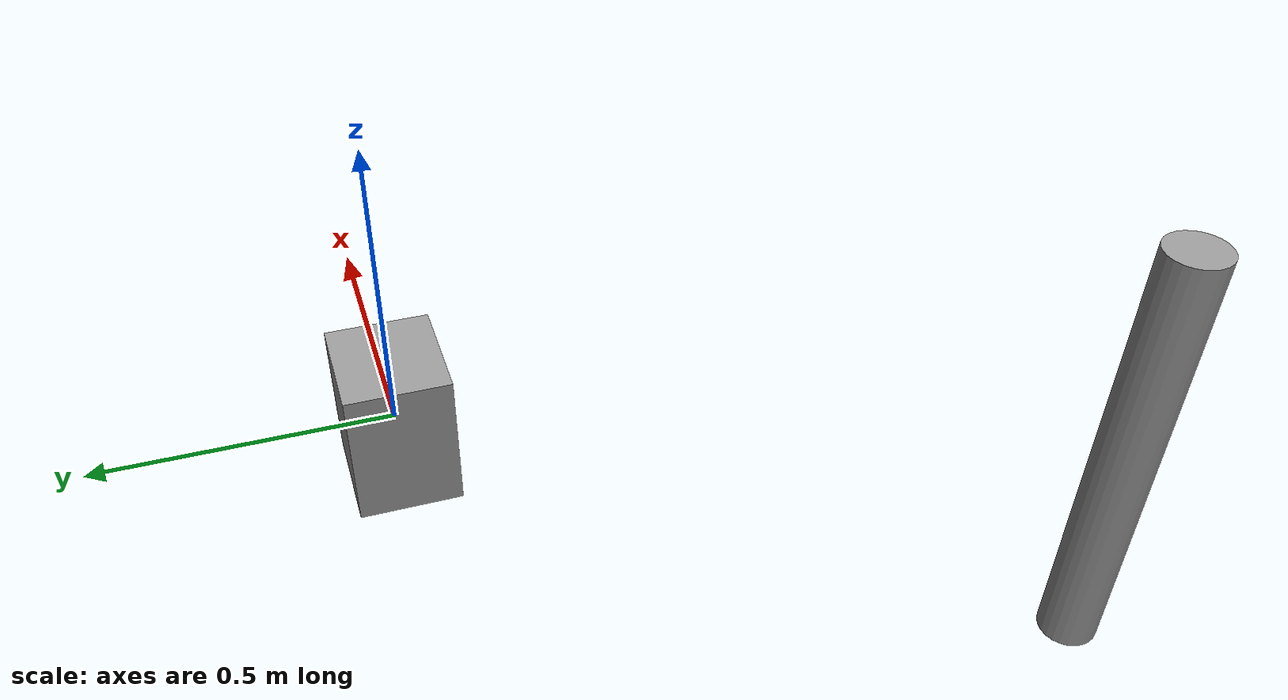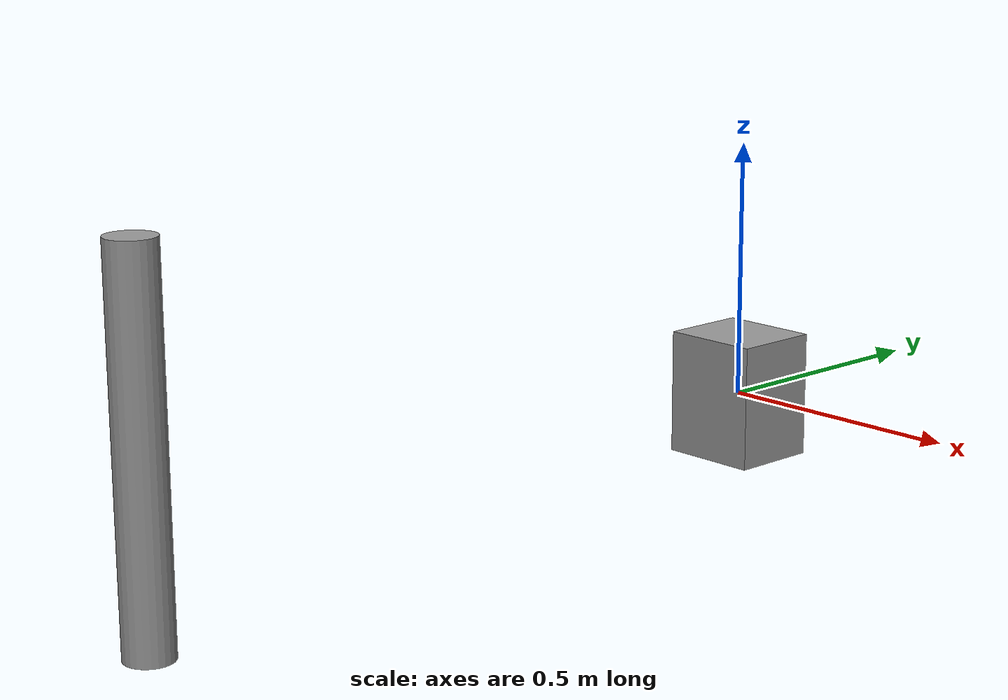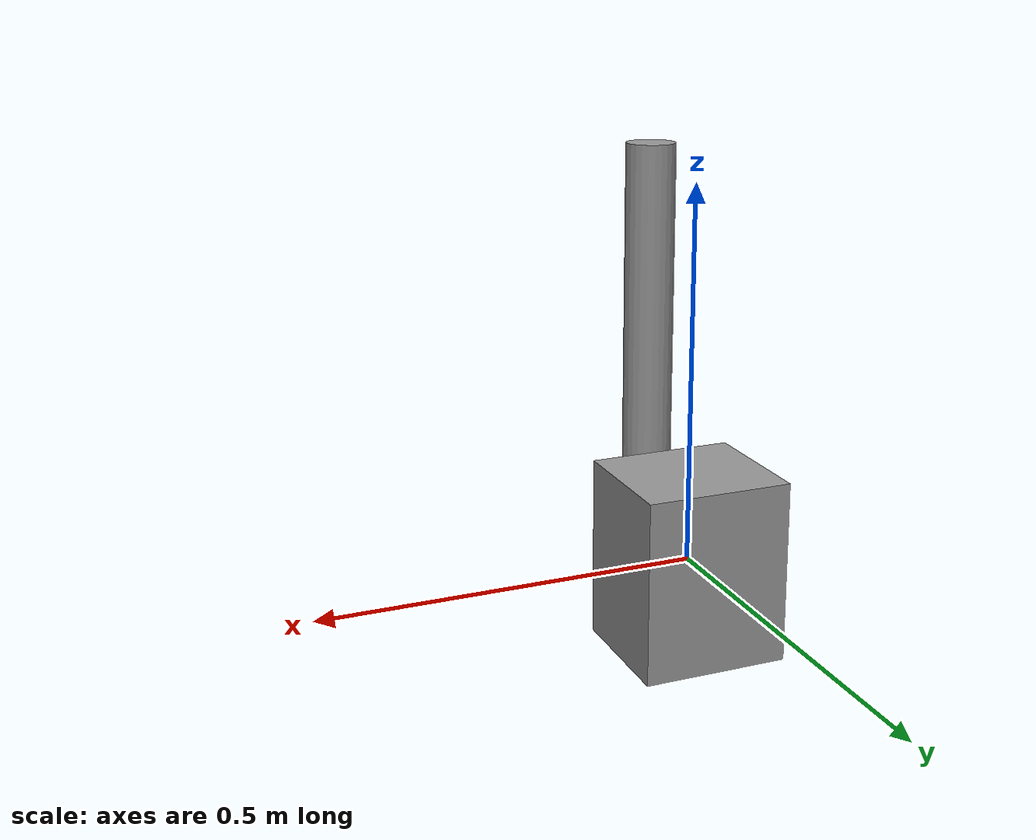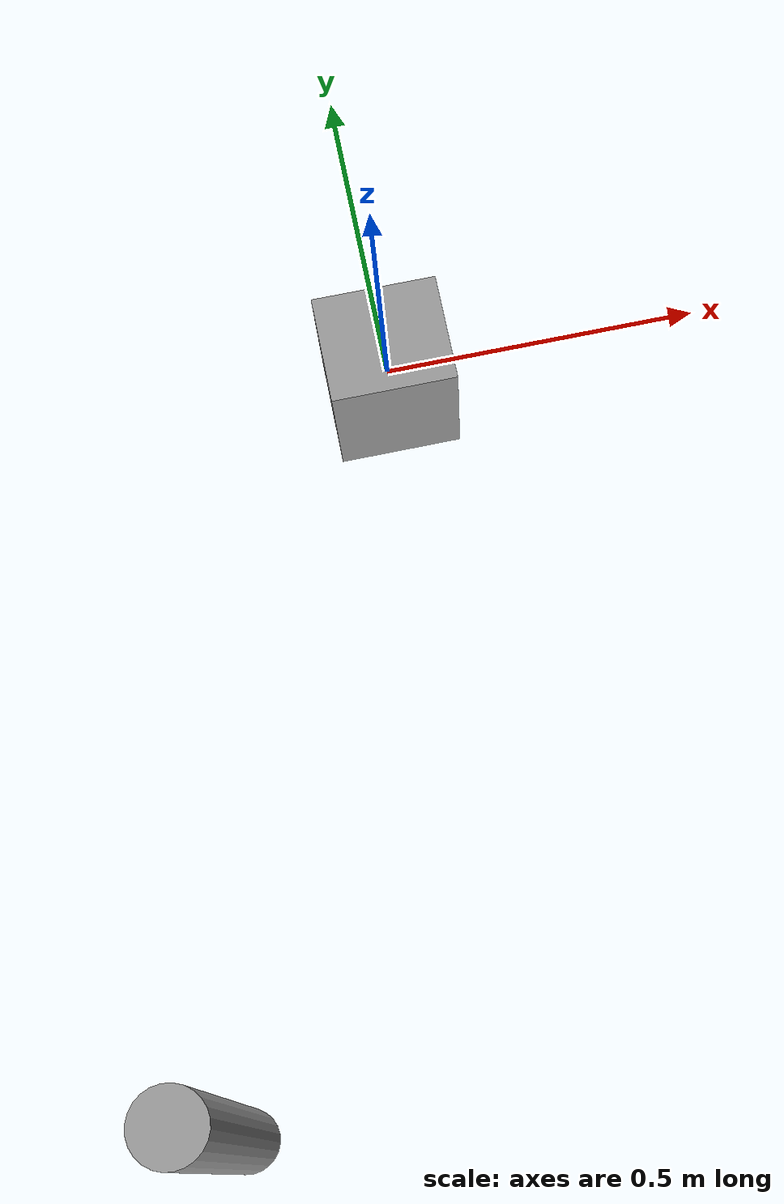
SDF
<?xml version='1.0'?>
<sdf version='1.7'>
  <model name='random_shapes'>
    <link name='link'>
      <inertial>
        <mass>0.00841585</mass>
        <inertia>
          <ixx>6.34733e-05</ixx>
          <ixy>0</ixy>
          <ixz>0</ixz>
          <iyy>6.90793e-05</iyy>
          <iyz>0</iyz>
          <izz>4.85621e-05</izz>
        </inertia>
        <pose>0 0 0 0 -0 0</pose>
      </inertial>
      <self_collide>0</self_collide>
      <enable_wind>0</enable_wind>
      <kinematic>0</kinematic>
      <pose>0 0 0 0 -0 0</pose>
      <visual name='visual'>
        <geometry>
          <box>
            <size>0.196516 0.175 0.244704</size>
          </box>
        </geometry>
        <material>
          <script>
            <name>Gazebo/Grey</name>
            <uri>file://media/materials/scripts/gazebo.material</uri>
          </script>
          <shader type='pixel'/>
        </material>
        <pose>0 0 0 0 -0 0</pose>
        <transparency>0</transparency>
        <cast_shadows>1</cast_shadows>
      </visual>
      <collision name='collision'>
        <laser_retro>0</laser_retro>
        <max_contacts>10</max_contacts>
        <pose>0 0 0 0 -0 0</pose>
        <geometry>
          <box>
            <size>0.196516 0.175 0.244704</size>
          </box>
        </geometry>
        <surface>
          <friction>
            <ode>
              <mu>1</mu>
              <mu2>1</mu2>
              <fdir1>0 0 0</fdir1>
              <slip1>0</slip1>
              <slip2>0</slip2>
            </ode>
            <torsional>
              <coefficient>1</coefficient>
              <patch_radius>0</patch_radius>
              <surface_radius>0</surface_radius>
              <use_patch_radius>1</use_patch_radius>
              <ode>
                <slip>0</slip>
              </ode>
            </torsional>
          </friction>
          <bounce>
            <restitution_coefficient>0</restitution_coefficient>
            <threshold>1e+06</threshold>
          </bounce>
          <contact>
            <collide_without_contact>0</collide_without_contact>
            <collide_without_contact_bitmask>1</collide_without_contact_bitmask>
            <collide_bitmask>1</collide_bitmask>
            <ode>
              <soft_cfm>0</soft_cfm>
              <soft_erp>0.2</soft_erp>
              <kp>1e+13</kp>
              <kd>1</kd>
              <max_vel>0.01</max_vel>
              <min_depth>0</min_depth>
            </ode>
            <bullet>
              <split_impulse>1</split_impulse>
              <split_impulse_penetration_threshold>-0.01</split_impulse_penetration_threshold>
              <soft_cfm>0</soft_cfm>
              <soft_erp>0.2</soft_erp>
              <kp>1e+13</kp>
              <kd>1</kd>
            </bullet>
          </contact>
        </surface>
      </collision>
    </link>
    <link name='link_0'>
      <inertial>
        <mass>0.00872598</mass>
        <inertia>
          <ixx>0.000477359</ixx>
          <ixy>0</ixy>
          <ixz>0</ixz>
          <iyy>0.000477359</iyy>
          <iyz>0</iyz>
          <izz>1.18256e-05</izz>
        </inertia>
        <pose>0 0 0 0 -0 0</pose>
      </inertial>
      <pose>-0.465888 -1.10443 0 0 -1e-05 0</pose>
      <visual name='visual'>
        <pose>0 0 0 0 -0 0</pose>
        <geometry>
          <cylinder>
            <radius>0.0520618</radius>
            <length>0.805193</length>
          </cylinder>
        </geometry>
        <material>
          <lighting>1</lighting>
          <script>
            <uri>file://media/materials/scripts/gazebo.material</uri>
            <name>Gazebo/Grey</name>
          </script>
          <shader type='pixel'/>
        </material>
        <transparency>0</transparency>
        <cast_shadows>1</cast_shadows>
      </visual>
      <collision name='collision'>
        <laser_retro>0</laser_retro>
        <max_contacts>10</max_contacts>
        <pose>0 0 0 0 -0 0</pose>
        <geometry>
          <cylinder>
            <radius>0.052062</radius>
            <length>0.805193</length>
          </cylinder>
        </geometry>
        <surface>
          <friction>
            <ode>
              <mu>1</mu>
              <mu2>1</mu2>
              <fdir1>0 0 0</fdir1>
              <slip1>0</slip1>
              <slip2>0</slip2>
            </ode>
            <torsional>
              <coefficient>1</coefficient>
              <patch_radius>0</patch_radius>
              <surface_radius>0</surface_radius>
              <use_patch_radius>1</use_patch_radius>
              <ode>
                <slip>0</slip>
              </ode>
            </torsional>
          </friction>
          <bounce>
            <restitution_coefficient>0</restitution_coefficient>
            <threshold>1e+06</threshold>
          </bounce>
          <contact>
            <collide_without_contact>0</collide_without_contact>
            <collide_without_contact_bitmask>1</collide_without_contact_bitmask>
            <collide_bitmask>1</collide_bitmask>
            <ode>
              <soft_cfm>0</soft_cfm>
              <soft_erp>0.2</soft_erp>
              <kp>1e+13</kp>
              <kd>1</kd>
              <max_vel>0.01</max_vel>
              <min_depth>0</min_depth>
            </ode>
            <bullet>
              <split_impulse>1</split_impulse>
              <split_impulse_penetration_threshold>-0.01</split_impulse_penetration_threshold>
              <soft_cfm>0</soft_cfm>
              <soft_erp>0.2</soft_erp>
              <kp>1e+13</kp>
              <kd>1</kd>
            </bullet>
          </contact>
        </surface>
      </collision>
    </link>
    <static>0</static>
    <allow_auto_disable>1</allow_auto_disable>
  </model>
</sdf>
